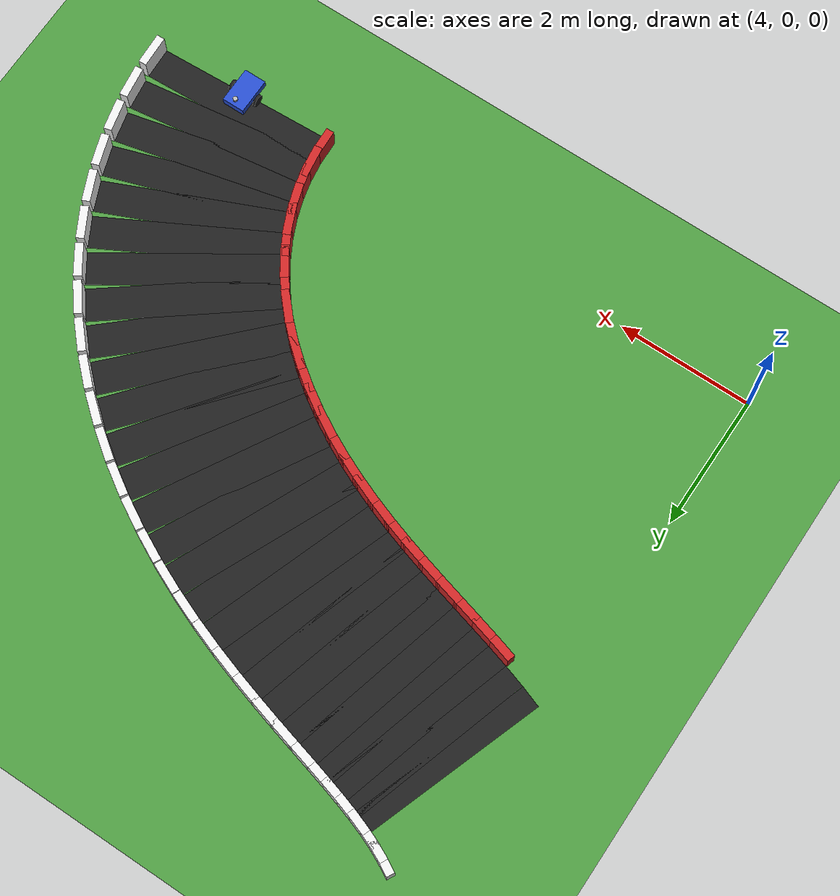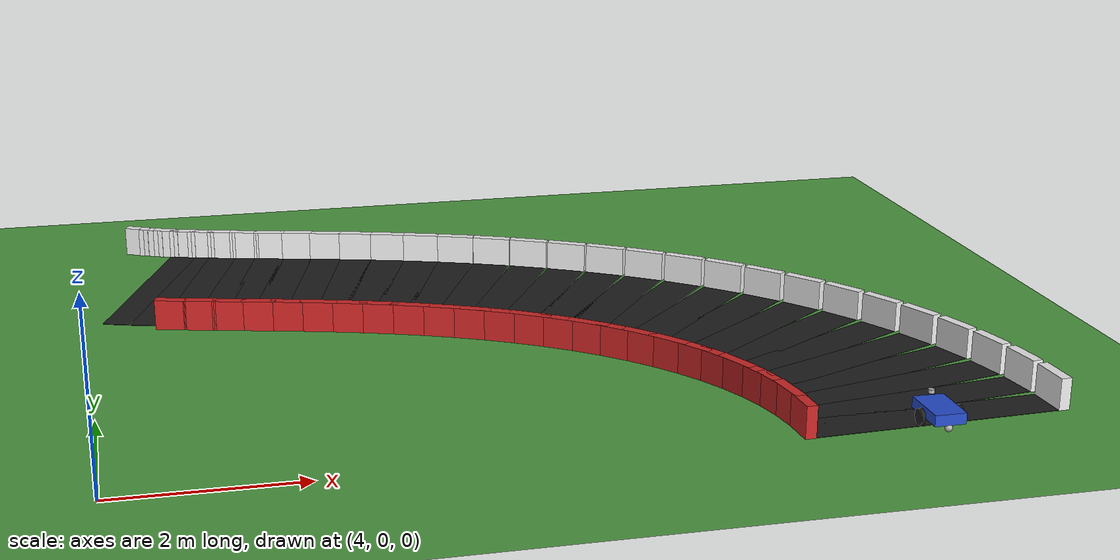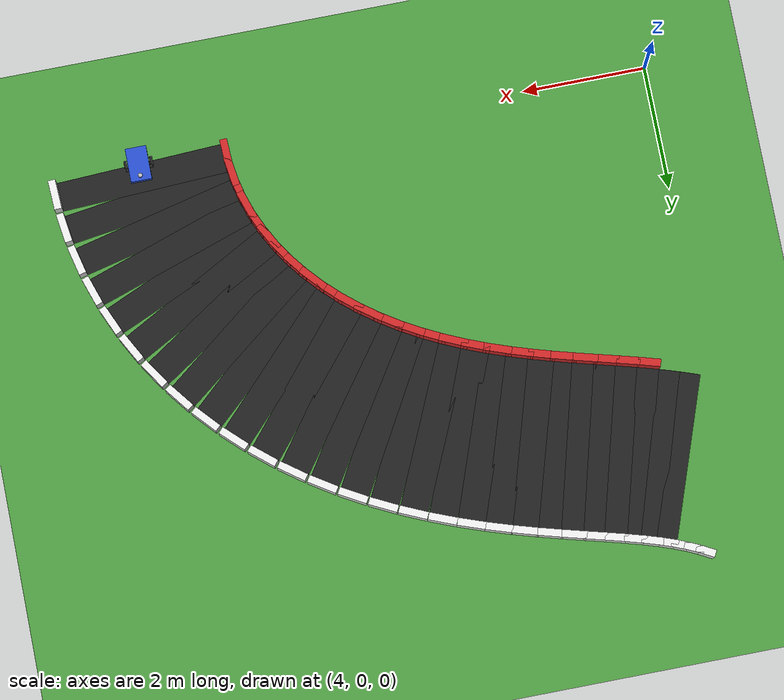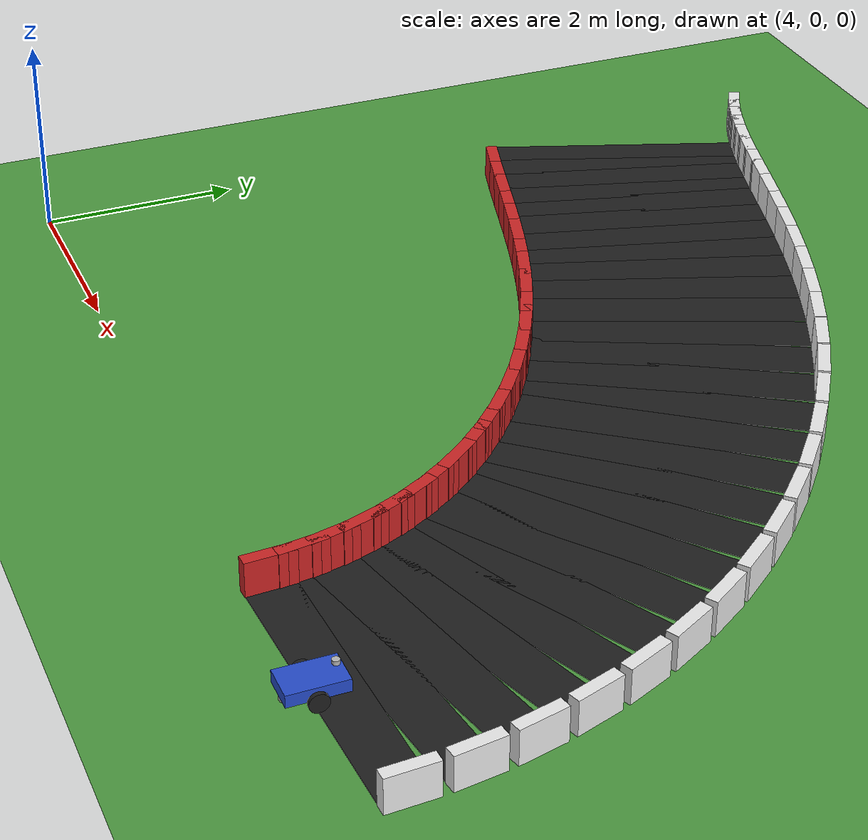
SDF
<sdf version="1.7">
 <world name="rl_track">
  <include><uri>model://sun</uri></include>
  <model name="ground">
   <static>true</static>
   <link name="link">
    <collision name="collision">
     <geometry><plane><normal>0 0 1</normal><size>40 40</size></plane></geometry>
    </collision>
    <visual name="visual">
     <geometry><plane><normal>0 0 1</normal><size>40 40</size></plane></geometry>
     <material>
      <script><uri>file://media/materials/scripts/gazebo.material</uri><name>Gazebo/Grass</name></script>
     </material>
    </visual>
   </link>
  </model>
  <model name="track">
   <static>true</static>
   <link name="road_000">
    <pose>12.289958 0.214412 0.003000 0 0 1.617599028</pose>
    <visual name="visual">
     <geometry><box><size>0.469294 2.700000 0.006000</size></box></geometry>
     <material>
      <script><uri>file://media/materials/scripts/gazebo.material</uri><name>Gazebo/Black</name></script>
     </material>
    </visual>
   </link>
   <link name="inner_wall_000">
    <pose>13.698414 0.280380 0.175000 0 0 1.617599028</pose>
    <collision name="collision">
     <geometry><box><size>0.479294 0.120000 0.350000</size></box></geometry>
     <surface><contact><ode><kp>1000000</kp><kd>10</kd></ode></contact></surface>
    </collision>
    <visual name="visual">
     <geometry><box><size>0.479294 0.120000 0.350000</size></box></geometry>
     <material>
      <script><uri>file://media/materials/scripts/gazebo.material</uri><name>Gazebo/White</name></script>
     </material>
    </visual>
   </link>
   <link name="outer_wall_000">
    <pose>10.881502 0.148444 0.175000 0 0 1.617599028</pose>
    <collision name="collision">
     <geometry><box><size>0.479294 0.120000 0.350000</size></box></geometry>
     <surface><contact><ode><kp>1000000</kp><kd>10</kd></ode></contact></surface>
    </collision>
    <visual name="visual">
     <geometry><box><size>0.479294 0.120000 0.350000</size></box></geometry>
     <material>
      <script><uri>file://media/materials/scripts/gazebo.material</uri><name>Gazebo/Red</name></script>
     </material>
    </visual>
   </link>
   <link name="road_001">
    <pose>12.249907 0.641661 0.003000 0 0 1.710862233</pose>
    <visual name="visual">
     <geometry><box><size>0.469884 2.700000 0.006000</size></box></geometry>
     <material>
      <script><uri>file://media/materials/scripts/gazebo.material</uri><name>Gazebo/Black</name></script>
     </material>
    </visual>
   </link>
   <link name="inner_wall_001">
    <pose>13.646099 0.838509 0.175000 0 0 1.710862233</pose>
    <collision name="collision">
     <geometry><box><size>0.479884 0.120000 0.350000</size></box></geometry>
     <surface><contact><ode><kp>1000000</kp><kd>10</kd></ode></contact></surface>
    </collision>
    <visual name="visual">
     <geometry><box><size>0.479884 0.120000 0.350000</size></box></geometry>
     <material>
      <script><uri>file://media/materials/scripts/gazebo.material</uri><name>Gazebo/White</name></script>
     </material>
    </visual>
   </link>
   <link name="outer_wall_001">
    <pose>10.853716 0.444814 0.175000 0 0 1.710862233</pose>
    <collision name="collision">
     <geometry><box><size>0.479884 0.120000 0.350000</size></box></geometry>
     <surface><contact><ode><kp>1000000</kp><kd>10</kd></ode></contact></surface>
    </collision>
    <visual name="visual">
     <geometry><box><size>0.479884 0.120000 0.350000</size></box></geometry>
     <material>
      <script><uri>file://media/materials/scripts/gazebo.material</uri><name>Gazebo/Red</name></script>
     </material>
    </visual>
   </link>
   <link name="road_002">
    <pose>12.170283 1.064216 0.003000 0 0 1.803113877</pose>
    <visual name="visual">
     <geometry><box><size>0.471014 2.700000 0.006000</size></box></geometry>
     <material>
      <script><uri>file://media/materials/scripts/gazebo.material</uri><name>Gazebo/Black</name></script>
     </material>
    </visual>
   </link>
   <link name="inner_wall_002">
    <pose>13.542404 1.388845 0.175000 0 0 1.803113877</pose>
    <collision name="collision">
     <geometry><box><size>0.481014 0.120000 0.350000</size></box></geometry>
     <surface><contact><ode><kp>1000000</kp><kd>10</kd></ode></contact></surface>
    </collision>
    <visual name="visual">
     <geometry><box><size>0.481014 0.120000 0.350000</size></box></geometry>
     <material>
      <script><uri>file://media/materials/scripts/gazebo.material</uri><name>Gazebo/White</name></script>
     </material>
    </visual>
   </link>
   <link name="outer_wall_002">
    <pose>10.798162 0.739587 0.175000 0 0 1.803113877</pose>
    <collision name="collision">
     <geometry><box><size>0.481014 0.120000 0.350000</size></box></geometry>
     <surface><contact><ode><kp>1000000</kp><kd>10</kd></ode></contact></surface>
    </collision>
    <visual name="visual">
     <geometry><box><size>0.481014 0.120000 0.350000</size></box></geometry>
     <material>
      <script><uri>file://media/materials/scripts/gazebo.material</uri><name>Gazebo/Red</name></script>
     </material>
    </visual>
   </link>
   <link name="road_003">
    <pose>12.052026 1.479044 0.003000 0 0 1.893727624</pose>
    <visual name="visual">
     <geometry><box><size>0.472582 2.700000 0.006000</size></box></geometry>
     <material>
      <script><uri>file://media/materials/scripts/gazebo.material</uri><name>Gazebo/Black</name></script>
     </material>
    </visual>
   </link>
   <link name="inner_wall_003">
    <pose>13.389143 1.926505 0.175000 0 0 1.893727624</pose>
    <collision name="collision">
     <geometry><box><size>0.482582 0.120000 0.350000</size></box></geometry>
     <surface><contact><ode><kp>1000000</kp><kd>10</kd></ode></contact></surface>
    </collision>
    <visual name="visual">
     <geometry><box><size>0.482582 0.120000 0.350000</size></box></geometry>
     <material>
      <script><uri>file://media/materials/scripts/gazebo.material</uri><name>Gazebo/White</name></script>
     </material>
    </visual>
   </link>
   <link name="outer_wall_003">
    <pose>10.714910 1.031584 0.175000 0 0 1.893727624</pose>
    <collision name="collision">
     <geometry><box><size>0.482582 0.120000 0.350000</size></box></geometry>
     <surface><contact><ode><kp>1000000</kp><kd>10</kd></ode></contact></surface>
    </collision>
    <visual name="visual">
     <geometry><box><size>0.482582 0.120000 0.350000</size></box></geometry>
     <material>
      <script><uri>file://media/materials/scripts/gazebo.material</uri><name>Gazebo/Red</name></script>
     </material>
    </visual>
   </link>
   <link name="road_004">
    <pose>11.896531 1.883260 0.003000 0 0 1.982142442</pose>
    <visual name="visual">
     <geometry><box><size>0.474449 2.700000 0.006000</size></box></geometry>
     <material>
      <script><uri>file://media/materials/scripts/gazebo.material</uri><name>Gazebo/Black</name></script>
     </material>
    </visual>
   </link>
   <link name="inner_wall_004">
    <pose>13.188914 2.447039 0.175000 0 0 1.982142442</pose>
    <collision name="collision">
     <geometry><box><size>0.484449 0.120000 0.350000</size></box></geometry>
     <surface><contact><ode><kp>1000000</kp><kd>10</kd></ode></contact></surface>
    </collision>
    <visual name="visual">
     <geometry><box><size>0.484449 0.120000 0.350000</size></box></geometry>
     <material>
      <script><uri>file://media/materials/scripts/gazebo.material</uri><name>Gazebo/White</name></script>
     </material>
    </visual>
   </link>
   <link name="outer_wall_004">
    <pose>10.604148 1.319480 0.175000 0 0 1.982142442</pose>
    <collision name="collision">
     <geometry><box><size>0.484449 0.120000 0.350000</size></box></geometry>
     <surface><contact><ode><kp>1000000</kp><kd>10</kd></ode></contact></surface>
    </collision>
    <visual name="visual">
     <geometry><box><size>0.484449 0.120000 0.350000</size></box></geometry>
     <material>
      <script><uri>file://media/materials/scripts/gazebo.material</uri><name>Gazebo/Red</name></script>
     </material>
    </visual>
   </link>
   <link name="road_005">
    <pose>11.705614 2.274175 0.003000 0 0 2.067876769</pose>
    <visual name="visual">
     <geometry><box><size>0.476441 2.700000 0.006000</size></box></geometry>
     <material>
      <script><uri>file://media/materials/scripts/gazebo.material</uri><name>Gazebo/Black</name></script>
     </material>
    </visual>
   </link>
   <link name="inner_wall_005">
    <pose>12.944974 2.946550 0.175000 0 0 2.067876769</pose>
    <collision name="collision">
     <geometry><box><size>0.486441 0.120000 0.350000</size></box></geometry>
     <surface><contact><ode><kp>1000000</kp><kd>10</kd></ode></contact></surface>
    </collision>
    <visual name="visual">
     <geometry><box><size>0.486441 0.120000 0.350000</size></box></geometry>
     <material>
      <script><uri>file://media/materials/scripts/gazebo.material</uri><name>Gazebo/White</name></script>
     </material>
    </visual>
   </link>
   <link name="outer_wall_005">
    <pose>10.466255 1.601801 0.175000 0 0 2.067876769</pose>
    <collision name="collision">
     <geometry><box><size>0.486441 0.120000 0.350000</size></box></geometry>
     <surface><contact><ode><kp>1000000</kp><kd>10</kd></ode></contact></surface>
    </collision>
    <visual name="visual">
     <geometry><box><size>0.486441 0.120000 0.350000</size></box></geometry>
     <material>
      <script><uri>file://media/materials/scripts/gazebo.material</uri><name>Gazebo/Red</name></script>
     </material>
    </visual>
   </link>
   <link name="road_006">
    <pose>11.481486 2.649353 0.003000 0 0 2.150533756</pose>
    <visual name="visual">
     <geometry><box><size>0.478358 2.700000 0.006000</size></box></geometry>
     <material>
      <script><uri>file://media/materials/scripts/gazebo.material</uri><name>Gazebo/Black</name></script>
     </material>
    </visual>
   </link>
   <link name="inner_wall_006">
    <pose>12.661101 3.421757 0.175000 0 0 2.150533756</pose>
    <collision name="collision">
     <geometry><box><size>0.488358 0.120000 0.350000</size></box></geometry>
     <surface><contact><ode><kp>1000000</kp><kd>10</kd></ode></contact></surface>
    </collision>
    <visual name="visual">
     <geometry><box><size>0.488358 0.120000 0.350000</size></box></geometry>
     <material>
      <script><uri>file://media/materials/scripts/gazebo.material</uri><name>Gazebo/White</name></script>
     </material>
    </visual>
   </link>
   <link name="outer_wall_006">
    <pose>10.301871 1.876949 0.175000 0 0 2.150533756</pose>
    <collision name="collision">
     <geometry><box><size>0.488358 0.120000 0.350000</size></box></geometry>
     <surface><contact><ode><kp>1000000</kp><kd>10</kd></ode></contact></surface>
    </collision>
    <visual name="visual">
     <geometry><box><size>0.488358 0.120000 0.350000</size></box></geometry>
     <material>
      <script><uri>file://media/materials/scripts/gazebo.material</uri><name>Gazebo/Red</name></script>
     </material>
    </visual>
   </link>
   <link name="road_007">
    <pose>11.226709 3.006650 0.003000 0 0 2.229798280</pose>
    <visual name="visual">
     <geometry><box><size>0.479992 2.700000 0.006000</size></box></geometry>
     <material>
      <script><uri>file://media/materials/scripts/gazebo.material</uri><name>Gazebo/Black</name></script>
     </material>
    </visual>
   </link>
   <link name="inner_wall_007">
    <pose>12.341460 3.870032 0.175000 0 0 2.229798280</pose>
    <collision name="collision">
     <geometry><box><size>0.489992 0.120000 0.350000</size></box></geometry>
     <surface><contact><ode><kp>1000000</kp><kd>10</kd></ode></contact></surface>
    </collision>
    <visual name="visual">
     <geometry><box><size>0.489992 0.120000 0.350000</size></box></geometry>
     <material>
      <script><uri>file://media/materials/scripts/gazebo.material</uri><name>Gazebo/White</name></script>
     </material>
    </visual>
   </link>
   <link name="outer_wall_007">
    <pose>10.111958 2.143267 0.175000 0 0 2.229798280</pose>
    <collision name="collision">
     <geometry><box><size>0.489992 0.120000 0.350000</size></box></geometry>
     <surface><contact><ode><kp>1000000</kp><kd>10</kd></ode></contact></surface>
    </collision>
    <visual name="visual">
     <geometry><box><size>0.489992 0.120000 0.350000</size></box></geometry>
     <material>
      <script><uri>file://media/materials/scripts/gazebo.material</uri><name>Gazebo/Red</name></script>
     </material>
    </visual>
   </link>
   <link name="road_008">
    <pose>10.944152 3.344256 0.003000 0 0 2.305427389</pose>
    <visual name="visual">
     <geometry><box><size>0.481129 2.700000 0.006000</size></box></geometry>
     <material>
      <script><uri>file://media/materials/scripts/gazebo.material</uri><name>Gazebo/Black</name></script>
     </material>
    </visual>
   </link>
   <link name="inner_wall_008">
    <pose>11.990482 4.289398 0.175000 0 0 2.305427389</pose>
    <collision name="collision">
     <geometry><box><size>0.491129 0.120000 0.350000</size></box></geometry>
     <surface><contact><ode><kp>1000000</kp><kd>10</kd></ode></contact></surface>
    </collision>
    <visual name="visual">
     <geometry><box><size>0.491129 0.120000 0.350000</size></box></geometry>
     <material>
      <script><uri>file://media/materials/scripts/gazebo.material</uri><name>Gazebo/White</name></script>
     </material>
    </visual>
   </link>
   <link name="outer_wall_008">
    <pose>9.897822 2.399114 0.175000 0 0 2.305427389</pose>
    <collision name="collision">
     <geometry><box><size>0.491129 0.120000 0.350000</size></box></geometry>
     <surface><contact><ode><kp>1000000</kp><kd>10</kd></ode></contact></surface>
    </collision>
    <visual name="visual">
     <geometry><box><size>0.491129 0.120000 0.350000</size></box></geometry>
     <material>
      <script><uri>file://media/materials/scripts/gazebo.material</uri><name>Gazebo/Red</name></script>
     </material>
    </visual>
   </link>
   <link name="road_009">
    <pose>10.636938 3.660728 0.003000 0 0 2.377236263</pose>
    <visual name="visual">
     <geometry><box><size>0.481562 2.700000 0.006000</size></box></geometry>
     <material>
      <script><uri>file://media/materials/scripts/gazebo.material</uri><name>Gazebo/Black</name></script>
     </material>
    </visual>
   </link>
   <link name="inner_wall_009">
    <pose>11.612761 4.678506 0.175000 0 0 2.377236263</pose>
    <collision name="collision">
     <geometry><box><size>0.491562 0.120000 0.350000</size></box></geometry>
     <surface><contact><ode><kp>1000000</kp><kd>10</kd></ode></contact></surface>
    </collision>
    <visual name="visual">
     <geometry><box><size>0.491562 0.120000 0.350000</size></box></geometry>
     <material>
      <script><uri>file://media/materials/scripts/gazebo.material</uri><name>Gazebo/White</name></script>
     </material>
    </visual>
   </link>
   <link name="outer_wall_009">
    <pose>9.661116 2.642951 0.175000 0 0 2.377236263</pose>
    <collision name="collision">
     <geometry><box><size>0.491562 0.120000 0.350000</size></box></geometry>
     <surface><contact><ode><kp>1000000</kp><kd>10</kd></ode></contact></surface>
    </collision>
    <visual name="visual">
     <geometry><box><size>0.491562 0.120000 0.350000</size></box></geometry>
     <material>
      <script><uri>file://media/materials/scripts/gazebo.material</uri><name>Gazebo/Red</name></script>
     </material>
    </visual>
   </link>
   <link name="road_010">
    <pose>10.308393 3.955016 0.003000 0 0 2.445081689</pose>
    <visual name="visual">
     <geometry><box><size>0.481097 2.700000 0.006000</size></box></geometry>
     <material>
      <script><uri>file://media/materials/scripts/gazebo.material</uri><name>Gazebo/Black</name></script>
     </material>
    </visual>
   </link>
   <link name="inner_wall_010">
    <pose>11.212972 5.036607 0.175000 0 0 2.445081689</pose>
    <collision name="collision">
     <geometry><box><size>0.491097 0.120000 0.350000</size></box></geometry>
     <surface><contact><ode><kp>1000000</kp><kd>10</kd></ode></contact></surface>
    </collision>
    <visual name="visual">
     <geometry><box><size>0.491097 0.120000 0.350000</size></box></geometry>
     <material>
      <script><uri>file://media/materials/scripts/gazebo.material</uri><name>Gazebo/White</name></script>
     </material>
    </visual>
   </link>
   <link name="outer_wall_010">
    <pose>9.403814 2.873426 0.175000 0 0 2.445081689</pose>
    <collision name="collision">
     <geometry><box><size>0.491097 0.120000 0.350000</size></box></geometry>
     <surface><contact><ode><kp>1000000</kp><kd>10</kd></ode></contact></surface>
    </collision>
    <visual name="visual">
     <geometry><box><size>0.491097 0.120000 0.350000</size></box></geometry>
     <material>
      <script><uri>file://media/materials/scripts/gazebo.material</uri><name>Gazebo/Red</name></script>
     </material>
    </visual>
   </link>
   <link name="road_011">
    <pose>9.961980 4.226479 0.003000 0 0 2.508844629</pose>
    <visual name="visual">
     <geometry><box><size>0.479564 2.700000 0.006000</size></box></geometry>
     <material>
      <script><uri>file://media/materials/scripts/gazebo.material</uri><name>Gazebo/Black</name></script>
     </material>
    </visual>
   </link>
   <link name="inner_wall_011">
    <pose>10.795802 5.363511 0.175000 0 0 2.508844629</pose>
    <collision name="collision">
     <geometry><box><size>0.489564 0.120000 0.350000</size></box></geometry>
     <surface><contact><ode><kp>1000000</kp><kd>10</kd></ode></contact></surface>
    </collision>
    <visual name="visual">
     <geometry><box><size>0.489564 0.120000 0.350000</size></box></geometry>
     <material>
      <script><uri>file://media/materials/scripts/gazebo.material</uri><name>Gazebo/White</name></script>
     </material>
    </visual>
   </link>
   <link name="outer_wall_011">
    <pose>9.128159 3.089447 0.175000 0 0 2.508844629</pose>
    <collision name="collision">
     <geometry><box><size>0.489564 0.120000 0.350000</size></box></geometry>
     <surface><contact><ode><kp>1000000</kp><kd>10</kd></ode></contact></surface>
    </collision>
    <visual name="visual">
     <geometry><box><size>0.489564 0.120000 0.350000</size></box></geometry>
     <material>
      <script><uri>file://media/materials/scripts/gazebo.material</uri><name>Gazebo/Red</name></script>
     </material>
    </visual>
   </link>
   <link name="road_012">
    <pose>9.601244 4.474895 0.003000 0 0 2.568412942</pose>
    <visual name="visual">
     <geometry><box><size>0.476818 2.700000 0.006000</size></box></geometry>
     <material>
      <script><uri>file://media/materials/scripts/gazebo.material</uri><name>Gazebo/Black</name></script>
     </material>
    </visual>
   </link>
   <link name="inner_wall_012">
    <pose>10.365896 5.659550 0.175000 0 0 2.568412942</pose>
    <collision name="collision">
     <geometry><box><size>0.486818 0.120000 0.350000</size></box></geometry>
     <surface><contact><ode><kp>1000000</kp><kd>10</kd></ode></contact></surface>
    </collision>
    <visual name="visual">
     <geometry><box><size>0.486818 0.120000 0.350000</size></box></geometry>
     <material>
      <script><uri>file://media/materials/scripts/gazebo.material</uri><name>Gazebo/White</name></script>
     </material>
    </visual>
   </link>
   <link name="outer_wall_012">
    <pose>8.836592 3.290240 0.175000 0 0 2.568412942</pose>
    <collision name="collision">
     <geometry><box><size>0.486818 0.120000 0.350000</size></box></geometry>
     <surface><contact><ode><kp>1000000</kp><kd>10</kd></ode></contact></surface>
    </collision>
    <visual name="visual">
     <geometry><box><size>0.486818 0.120000 0.350000</size></box></geometry>
     <material>
      <script><uri>file://media/materials/scripts/gazebo.material</uri><name>Gazebo/Red</name></script>
     </material>
    </visual>
   </link>
   <link name="road_013">
    <pose>9.229746 4.700462 0.003000 0 0 2.623664831</pose>
    <visual name="visual">
     <geometry><box><size>0.472747 2.700000 0.006000</size></box></geometry>
     <material>
      <script><uri>file://media/materials/scripts/gazebo.material</uri><name>Gazebo/Black</name></script>
     </material>
    </visual>
   </link>
   <link name="inner_wall_013">
    <pose>9.927810 5.925536 0.175000 0 0 2.623664831</pose>
    <collision name="collision">
     <geometry><box><size>0.482747 0.120000 0.350000</size></box></geometry>
     <surface><contact><ode><kp>1000000</kp><kd>10</kd></ode></contact></surface>
    </collision>
    <visual name="visual">
     <geometry><box><size>0.482747 0.120000 0.350000</size></box></geometry>
     <material>
      <script><uri>file://media/materials/scripts/gazebo.material</uri><name>Gazebo/White</name></script>
     </material>
    </visual>
   </link>
   <link name="outer_wall_013">
    <pose>8.531682 3.475387 0.175000 0 0 2.623664831</pose>
    <collision name="collision">
     <geometry><box><size>0.482747 0.120000 0.350000</size></box></geometry>
     <surface><contact><ode><kp>1000000</kp><kd>10</kd></ode></contact></surface>
    </collision>
    <visual name="visual">
     <geometry><box><size>0.482747 0.120000 0.350000</size></box></geometry>
     <material>
      <script><uri>file://media/materials/scripts/gazebo.material</uri><name>Gazebo/Red</name></script>
     </material>
    </visual>
   </link>
   <link name="road_014">
    <pose>8.851002 4.903792 0.003000 0 0 2.674453203</pose>
    <visual name="visual">
     <geometry><box><size>0.467274 2.700000 0.006000</size></box></geometry>
     <material>
      <script><uri>file://media/materials/scripts/gazebo.material</uri><name>Gazebo/Black</name></script>
     </material>
    </visual>
   </link>
   <link name="inner_wall_014">
    <pose>9.485973 6.162725 0.175000 0 0 2.674453203</pose>
    <collision name="collision">
     <geometry><box><size>0.477274 0.120000 0.350000</size></box></geometry>
     <surface><contact><ode><kp>1000000</kp><kd>10</kd></ode></contact></surface>
    </collision>
    <visual name="visual">
     <geometry><box><size>0.477274 0.120000 0.350000</size></box></geometry>
     <material>
      <script><uri>file://media/materials/scripts/gazebo.material</uri><name>Gazebo/White</name></script>
     </material>
    </visual>
   </link>
   <link name="outer_wall_014">
    <pose>8.216031 3.644859 0.175000 0 0 2.674453203</pose>
    <collision name="collision">
     <geometry><box><size>0.477274 0.120000 0.350000</size></box></geometry>
     <surface><contact><ode><kp>1000000</kp><kd>10</kd></ode></contact></surface>
    </collision>
    <visual name="visual">
     <geometry><box><size>0.477274 0.120000 0.350000</size></box></geometry>
     <material>
      <script><uri>file://media/materials/scripts/gazebo.material</uri><name>Gazebo/Red</name></script>
     </material>
    </visual>
   </link>
   <link name="road_015">
    <pose>8.468426 5.085896 0.003000 0 0 2.720590876</pose>
    <visual name="visual">
     <geometry><box><size>0.460363 2.700000 0.006000</size></box></geometry>
     <material>
      <script><uri>file://media/materials/scripts/gazebo.material</uri><name>Gazebo/Black</name></script>
     </material>
    </visual>
   </link>
   <link name="inner_wall_015">
    <pose>9.044657 6.372775 0.175000 0 0 2.720590876</pose>
    <collision name="collision">
     <geometry><box><size>0.470363 0.120000 0.350000</size></box></geometry>
     <surface><contact><ode><kp>1000000</kp><kd>10</kd></ode></contact></surface>
    </collision>
    <visual name="visual">
     <geometry><box><size>0.470363 0.120000 0.350000</size></box></geometry>
     <material>
      <script><uri>file://media/materials/scripts/gazebo.material</uri><name>Gazebo/White</name></script>
     </material>
    </visual>
   </link>
   <link name="outer_wall_015">
    <pose>7.892194 3.799017 0.175000 0 0 2.720590876</pose>
    <collision name="collision">
     <geometry><box><size>0.470363 0.120000 0.350000</size></box></geometry>
     <surface><contact><ode><kp>1000000</kp><kd>10</kd></ode></contact></surface>
    </collision>
    <visual name="visual">
     <geometry><box><size>0.470363 0.120000 0.350000</size></box></geometry>
     <material>
      <script><uri>file://media/materials/scripts/gazebo.material</uri><name>Gazebo/Red</name></script>
     </material>
    </visual>
   </link>
   <link name="road_016">
    <pose>8.085265 5.248158 0.003000 0 0 2.761836565</pose>
    <visual name="visual">
     <geometry><box><size>0.452019 2.700000 0.006000</size></box></geometry>
     <material>
      <script><uri>file://media/materials/scripts/gazebo.material</uri><name>Gazebo/Black</name></script>
     </material>
    </visual>
   </link>
   <link name="inner_wall_016">
    <pose>8.607943 6.557703 0.175000 0 0 2.761836565</pose>
    <collision name="collision">
     <geometry><box><size>0.462019 0.120000 0.350000</size></box></geometry>
     <surface><contact><ode><kp>1000000</kp><kd>10</kd></ode></contact></surface>
    </collision>
    <visual name="visual">
     <geometry><box><size>0.462019 0.120000 0.350000</size></box></geometry>
     <material>
      <script><uri>file://media/materials/scripts/gazebo.material</uri><name>Gazebo/White</name></script>
     </material>
    </visual>
   </link>
   <link name="outer_wall_016">
    <pose>7.562586 3.938614 0.175000 0 0 2.761836565</pose>
    <collision name="collision">
     <geometry><box><size>0.462019 0.120000 0.350000</size></box></geometry>
     <surface><contact><ode><kp>1000000</kp><kd>10</kd></ode></contact></surface>
    </collision>
    <visual name="visual">
     <geometry><box><size>0.462019 0.120000 0.350000</size></box></geometry>
     <material>
      <script><uri>file://media/materials/scripts/gazebo.material</uri><name>Gazebo/Red</name></script>
     </material>
    </visual>
   </link>
   <link name="road_017">
    <pose>7.704551 5.392308 0.003000 0 0 2.797881679</pose>
    <visual name="visual">
     <geometry><box><size>0.442292 2.700000 0.006000</size></box></geometry>
     <material>
      <script><uri>file://media/materials/scripts/gazebo.material</uri><name>Gazebo/Black</name></script>
     </material>
    </visual>
   </link>
   <link name="inner_wall_017">
    <pose>8.179698 6.719838 0.175000 0 0 2.797881679</pose>
    <collision name="collision">
     <geometry><box><size>0.452292 0.120000 0.350000</size></box></geometry>
     <surface><contact><ode><kp>1000000</kp><kd>10</kd></ode></contact></surface>
    </collision>
    <visual name="visual">
     <geometry><box><size>0.452292 0.120000 0.350000</size></box></geometry>
     <material>
      <script><uri>file://media/materials/scripts/gazebo.material</uri><name>Gazebo/White</name></script>
     </material>
    </visual>
   </link>
   <link name="outer_wall_017">
    <pose>7.229405 4.064778 0.175000 0 0 2.797881679</pose>
    <collision name="collision">
     <geometry><box><size>0.452292 0.120000 0.350000</size></box></geometry>
     <surface><contact><ode><kp>1000000</kp><kd>10</kd></ode></contact></surface>
    </collision>
    <visual name="visual">
     <geometry><box><size>0.452292 0.120000 0.350000</size></box></geometry>
     <material>
      <script><uri>file://media/materials/scripts/gazebo.material</uri><name>Gazebo/Red</name></script>
     </material>
    </visual>
   </link>
   <link name="road_018">
    <pose>7.329049 5.520379 0.003000 0 0 2.828338421</pose>
    <visual name="visual">
     <geometry><box><size>0.431283 2.700000 0.006000</size></box></geometry>
     <material>
      <script><uri>file://media/materials/scripts/gazebo.material</uri><name>Gazebo/Black</name></script>
     </material>
    </visual>
   </link>
   <link name="inner_wall_018">
    <pose>7.763549 6.861762 0.175000 0 0 2.828338421</pose>
    <collision name="collision">
     <geometry><box><size>0.441283 0.120000 0.350000</size></box></geometry>
     <surface><contact><ode><kp>1000000</kp><kd>10</kd></ode></contact></surface>
    </collision>
    <visual name="visual">
     <geometry><box><size>0.441283 0.120000 0.350000</size></box></geometry>
     <material>
      <script><uri>file://media/materials/scripts/gazebo.material</uri><name>Gazebo/White</name></script>
     </material>
    </visual>
   </link>
   <link name="outer_wall_018">
    <pose>6.894549 4.178995 0.175000 0 0 2.828338421</pose>
    <collision name="collision">
     <geometry><box><size>0.441283 0.120000 0.350000</size></box></geometry>
     <surface><contact><ode><kp>1000000</kp><kd>10</kd></ode></contact></surface>
    </collision>
    <visual name="visual">
     <geometry><box><size>0.441283 0.120000 0.350000</size></box></geometry>
     <material>
      <script><uri>file://media/materials/scripts/gazebo.material</uri><name>Gazebo/Red</name></script>
     </material>
    </visual>
   </link>
   <link name="road_019">
    <pose>6.961211 5.634669 0.003000 0 0 2.852730410</pose>
    <visual name="visual">
     <geometry><box><size>0.419143 2.700000 0.006000</size></box></geometry>
     <material>
      <script><uri>file://media/materials/scripts/gazebo.material</uri><name>Gazebo/Black</name></script>
     </material>
    </visual>
   </link>
   <link name="inner_wall_019">
    <pose>7.362866 6.986250 0.175000 0 0 2.852730410</pose>
    <collision name="collision">
     <geometry><box><size>0.429143 0.120000 0.350000</size></box></geometry>
     <surface><contact><ode><kp>1000000</kp><kd>10</kd></ode></contact></surface>
    </collision>
    <visual name="visual">
     <geometry><box><size>0.429143 0.120000 0.350000</size></box></geometry>
     <material>
      <script><uri>file://media/materials/scripts/gazebo.material</uri><name>Gazebo/White</name></script>
     </material>
    </visual>
   </link>
   <link name="outer_wall_019">
    <pose>6.559556 4.283087 0.175000 0 0 2.852730410</pose>
    <collision name="collision">
     <geometry><box><size>0.429143 0.120000 0.350000</size></box></geometry>
     <surface><contact><ode><kp>1000000</kp><kd>10</kd></ode></contact></surface>
    </collision>
    <visual name="visual">
     <geometry><box><size>0.429143 0.120000 0.350000</size></box></geometry>
     <material>
      <script><uri>file://media/materials/scripts/gazebo.material</uri><name>Gazebo/Red</name></script>
     </material>
    </visual>
   </link>
   <link name="road_020">
    <pose>6.603140 5.737687 0.003000 0 0 2.870488422</pose>
    <visual name="visual">
     <geometry><box><size>0.406078 2.700000 0.006000</size></box></geometry>
     <material>
      <script><uri>file://media/materials/scripts/gazebo.material</uri><name>Gazebo/Black</name></script>
     </material>
    </visual>
   </link>
   <link name="inner_wall_020">
    <pose>6.980731 7.096188 0.175000 0 0 2.870488422</pose>
    <collision name="collision">
     <geometry><box><size>0.416078 0.120000 0.350000</size></box></geometry>
     <surface><contact><ode><kp>1000000</kp><kd>10</kd></ode></contact></surface>
    </collision>
    <visual name="visual">
     <geometry><box><size>0.416078 0.120000 0.350000</size></box></geometry>
     <material>
      <script><uri>file://media/materials/scripts/gazebo.material</uri><name>Gazebo/White</name></script>
     </material>
    </visual>
   </link>
   <link name="outer_wall_020">
    <pose>6.225548 4.379186 0.175000 0 0 2.870488422</pose>
    <collision name="collision">
     <geometry><box><size>0.416078 0.120000 0.350000</size></box></geometry>
     <surface><contact><ode><kp>1000000</kp><kd>10</kd></ode></contact></surface>
    </collision>
    <visual name="visual">
     <geometry><box><size>0.416078 0.120000 0.350000</size></box></geometry>
     <material>
      <script><uri>file://media/materials/scripts/gazebo.material</uri><name>Gazebo/Red</name></script>
     </material>
    </visual>
   </link>
   <link name="road_021">
    <pose>6.256560 5.832104 0.003000 0 0 2.880955869</pose>
    <visual name="visual">
     <geometry><box><size>0.392353 2.700000 0.006000</size></box></geometry>
     <material>
      <script><uri>file://media/materials/scripts/gazebo.material</uri><name>Gazebo/Black</name></script>
     </material>
    </visual>
   </link>
   <link name="inner_wall_021">
    <pose>6.619911 7.194483 0.175000 0 0 2.880955869</pose>
    <collision name="collision">
     <geometry><box><size>0.402353 0.120000 0.350000</size></box></geometry>
     <surface><contact><ode><kp>1000000</kp><kd>10</kd></ode></contact></surface>
    </collision>
    <visual name="visual">
     <geometry><box><size>0.402353 0.120000 0.350000</size></box></geometry>
     <material>
      <script><uri>file://media/materials/scripts/gazebo.material</uri><name>Gazebo/White</name></script>
     </material>
    </visual>
   </link>
   <link name="outer_wall_021">
    <pose>5.893209 4.469725 0.175000 0 0 2.880955869</pose>
    <collision name="collision">
     <geometry><box><size>0.402353 0.120000 0.350000</size></box></geometry>
     <surface><contact><ode><kp>1000000</kp><kd>10</kd></ode></contact></surface>
    </collision>
    <visual name="visual">
     <geometry><box><size>0.402353 0.120000 0.350000</size></box></geometry>
     <material>
      <script><uri>file://media/materials/scripts/gazebo.material</uri><name>Gazebo/Red</name></script>
     </material>
    </visual>
   </link>
   <link name="road_022">
    <pose>5.922792 5.920691 0.003000 0 0 2.883411629</pose>
    <visual name="visual">
     <geometry><box><size>0.378296 2.700000 0.006000</size></box></geometry>
     <material>
      <script><uri>file://media/materials/scripts/gazebo.material</uri><name>Gazebo/Black</name></script>
     </material>
    </visual>
   </link>
   <link name="inner_wall_022">
    <pose>6.282797 7.283958 0.175000 0 0 2.883411629</pose>
    <collision name="collision">
     <geometry><box><size>0.388296 0.120000 0.350000</size></box></geometry>
     <surface><contact><ode><kp>1000000</kp><kd>10</kd></ode></contact></surface>
    </collision>
    <visual name="visual">
     <geometry><box><size>0.388296 0.120000 0.350000</size></box></geometry>
     <material>
      <script><uri>file://media/materials/scripts/gazebo.material</uri><name>Gazebo/White</name></script>
     </material>
    </visual>
   </link>
   <link name="outer_wall_022">
    <pose>5.562788 4.557424 0.175000 0 0 2.883411629</pose>
    <collision name="collision">
     <geometry><box><size>0.388296 0.120000 0.350000</size></box></geometry>
     <surface><contact><ode><kp>1000000</kp><kd>10</kd></ode></contact></surface>
    </collision>
    <visual name="visual">
     <geometry><box><size>0.388296 0.120000 0.350000</size></box></geometry>
     <material>
      <script><uri>file://media/materials/scripts/gazebo.material</uri><name>Gazebo/Red</name></script>
     </material>
    </visual>
   </link>
   <link name="road_023">
    <pose>5.602740 6.006264 0.003000 0 0 2.877121469</pose>
    <visual name="visual">
     <geometry><box><size>0.364298 2.700000 0.006000</size></box></geometry>
     <material>
      <script><uri>file://media/materials/scripts/gazebo.material</uri><name>Gazebo/Black</name></script>
     </material>
    </visual>
   </link>
   <link name="inner_wall_023">
    <pose>5.971312 7.367240 0.175000 0 0 2.877121469</pose>
    <collision name="collision">
     <geometry><box><size>0.374298 0.120000 0.350000</size></box></geometry>
     <surface><contact><ode><kp>1000000</kp><kd>10</kd></ode></contact></surface>
    </collision>
    <visual name="visual">
     <geometry><box><size>0.374298 0.120000 0.350000</size></box></geometry>
     <material>
      <script><uri>file://media/materials/scripts/gazebo.material</uri><name>Gazebo/White</name></script>
     </material>
    </visual>
   </link>
   <link name="outer_wall_023">
    <pose>5.234167 4.645289 0.175000 0 0 2.877121469</pose>
    <collision name="collision">
     <geometry><box><size>0.374298 0.120000 0.350000</size></box></geometry>
     <surface><contact><ode><kp>1000000</kp><kd>10</kd></ode></contact></surface>
    </collision>
    <visual name="visual">
     <geometry><box><size>0.374298 0.120000 0.350000</size></box></geometry>
     <material>
      <script><uri>file://media/materials/scripts/gazebo.material</uri><name>Gazebo/Red</name></script>
     </material>
    </visual>
   </link>
   <link name="road_024">
    <pose>5.296881 6.091621 0.003000 0 0 2.861432331</pose>
    <visual name="visual">
     <geometry><box><size>0.350813 2.700000 0.006000</size></box></geometry>
     <material>
      <script><uri>file://media/materials/scripts/gazebo.material</uri><name>Gazebo/Black</name></script>
     </material>
    </visual>
   </link>
   <link name="inner_wall_024">
    <pose>5.686760 7.446647 0.175000 0 0 2.861432331</pose>
    <collision name="collision">
     <geometry><box><size>0.360813 0.120000 0.350000</size></box></geometry>
     <surface><contact><ode><kp>1000000</kp><kd>10</kd></ode></contact></surface>
    </collision>
    <visual name="visual">
     <geometry><box><size>0.360813 0.120000 0.350000</size></box></geometry>
     <material>
      <script><uri>file://media/materials/scripts/gazebo.material</uri><name>Gazebo/White</name></script>
     </material>
    </visual>
   </link>
   <link name="outer_wall_024">
    <pose>4.907003 4.736595 0.175000 0 0 2.861432331</pose>
    <collision name="collision">
     <geometry><box><size>0.360813 0.120000 0.350000</size></box></geometry>
     <surface><contact><ode><kp>1000000</kp><kd>10</kd></ode></contact></surface>
    </collision>
    <visual name="visual">
     <geometry><box><size>0.360813 0.120000 0.350000</size></box></geometry>
     <material>
      <script><uri>file://media/materials/scripts/gazebo.material</uri><name>Gazebo/Red</name></script>
     </material>
    </visual>
   </link>
   <link name="road_025">
    <pose>5.005275 6.179484 0.003000 0 0 2.835922841</pose>
    <visual name="visual">
     <geometry><box><size>0.338349 2.700000 0.006000</size></box></geometry>
     <material>
      <script><uri>file://media/materials/scripts/gazebo.material</uri><name>Gazebo/Black</name></script>
     </material>
    </visual>
   </link>
   <link name="inner_wall_025">
    <pose>5.429589 7.524124 0.175000 0 0 2.835922841</pose>
    <collision name="collision">
     <geometry><box><size>0.348349 0.120000 0.350000</size></box></geometry>
     <surface><contact><ode><kp>1000000</kp><kd>10</kd></ode></contact></surface>
    </collision>
    <visual name="visual">
     <geometry><box><size>0.348349 0.120000 0.350000</size></box></geometry>
     <material>
      <script><uri>file://media/materials/scripts/gazebo.material</uri><name>Gazebo/White</name></script>
     </material>
    </visual>
   </link>
   <link name="road_026">
    <pose>4.727564 6.272439 0.003000 0 0 2.800612221</pose>
    <visual name="visual">
     <geometry><box><size>0.327451 2.700000 0.006000</size></box></geometry>
     <material>
      <script><uri>file://media/materials/scripts/gazebo.material</uri><name>Gazebo/Black</name></script>
     </material>
    </visual>
   </link>
   <link name="inner_wall_026">
    <pose>5.199084 7.601261 0.175000 0 0 2.800612221</pose>
    <collision name="collision">
     <geometry><box><size>0.337451 0.120000 0.350000</size></box></geometry>
     <surface><contact><ode><kp>1000000</kp><kd>10</kd></ode></contact></surface>
    </collision>
    <visual name="visual">
     <geometry><box><size>0.337451 0.120000 0.350000</size></box></geometry>
     <material>
      <script><uri>file://media/materials/scripts/gazebo.material</uri><name>Gazebo/White</name></script>
     </material>
    </visual>
   </link>
   <link name="inner_wall_027">
    <pose>4.993052 7.679458 0.175000 0 0 2.756201164</pose>
    <collision name="collision">
     <geometry><box><size>0.328662 0.120000 0.350000</size></box></geometry>
     <surface><contact><ode><kp>1000000</kp><kd>10</kd></ode></contact></surface>
    </collision>
    <visual name="visual">
     <geometry><box><size>0.328662 0.120000 0.350000</size></box></geometry>
     <material>
      <script><uri>file://media/materials/scripts/gazebo.material</uri><name>Gazebo/White</name></script>
     </material>
    </visual>
   </link>
   <link name="inner_wall_028">
    <pose>4.807627 7.760261 0.175000 0 0 2.704272586</pose>
    <collision name="collision">
     <geometry><box><size>0.322479 0.120000 0.350000</size></box></geometry>
     <surface><contact><ode><kp>1000000</kp><kd>10</kd></ode></contact></surface>
    </collision>
    <visual name="visual">
     <geometry><box><size>0.322479 0.120000 0.350000</size></box></geometry>
     <material>
      <script><uri>file://media/materials/scripts/gazebo.material</uri><name>Gazebo/White</name></script>
     </material>
    </visual>
   </link>
   <link name="inner_wall_029">
    <pose>4.637394 7.845782 0.175000 0 0 2.647340339</pose>
    <collision name="collision">
     <geometry><box><size>0.319282 0.120000 0.350000</size></box></geometry>
     <surface><contact><ode><kp>1000000</kp><kd>10</kd></ode></contact></surface>
    </collision>
    <visual name="visual">
     <geometry><box><size>0.319282 0.120000 0.350000</size></box></geometry>
     <material>
      <script><uri>file://media/materials/scripts/gazebo.material</uri><name>Gazebo/White</name></script>
     </material>
    </visual>
   </link>
  </model>
  <model name="rl_car">
   <pose>12.300000 0.000000 0.140000 0 0 1.570796327</pose>
   <link name="base_link">
    <inertial><mass>4.0</mass><inertia><ixx>0.050</ixx><iyy>0.110</iyy><izz>0.140</izz></inertia></inertial>
    <collision name="chassis_collision">
     <pose>0.015 0 0 0 0 0</pose>
     <geometry><box><size>0.55 0.34 0.12</size></box></geometry>
    </collision>
    <visual name="chassis_visual">
     <pose>0.015 0 0 0 0 0</pose>
     <geometry><box><size>0.55 0.34 0.12</size></box></geometry>
     <material>
      <script><uri>file://media/materials/scripts/gazebo.material</uri><name>Gazebo/Blue</name></script>
     </material>
    </visual>
    <sensor name="bumper" type="contact">
     <always_on>true</always_on>
     <update_rate>50</update_rate>
     <contact><collision>chassis_collision</collision></contact>
     <plugin name="bumper_ros" filename="libgazebo_ros_bumper.so">
      <ros><remapping>bumper_states:=contacts</remapping></ros>
      <frame_name>base_link</frame_name>
     </plugin>
    </sensor>
   </link>
   <link name="left_wheel">
    <pose relative_to="base_link">0 0.210 -0.050 -1.570796327 0 0</pose>
    <inertial>
     <mass>0.25</mass>
     <inertia><ixx>0.000590</ixx><iyy>0.000590</iyy><izz>0.001013</izz></inertia>
    </inertial>
    <collision name="collision">
     <geometry><cylinder><radius>0.09</radius><length>0.04</length></cylinder></geometry>
     <surface><friction><ode><mu>2.0</mu><mu2>2.0</mu2></ode></friction></surface>
    </collision>
    <visual name="visual">
     <geometry><cylinder><radius>0.09</radius><length>0.04</length></cylinder></geometry>
     <material>
      <script><uri>file://media/materials/scripts/gazebo.material</uri><name>Gazebo/Black</name></script>
     </material>
    </visual>
   </link>
   <link name="right_wheel">
    <pose relative_to="base_link">0 -0.210 -0.050 -1.570796327 0 0</pose>
    <inertial>
     <mass>0.25</mass>
     <inertia><ixx>0.000590</ixx><iyy>0.000590</iyy><izz>0.001013</izz></inertia>
    </inertial>
    <collision name="collision">
     <geometry><cylinder><radius>0.09</radius><length>0.04</length></cylinder></geometry>
     <surface><friction><ode><mu>2.0</mu><mu2>2.0</mu2></ode></friction></surface>
    </collision>
    <visual name="visual">
     <geometry><cylinder><radius>0.09</radius><length>0.04</length></cylinder></geometry>
     <material>
      <script><uri>file://media/materials/scripts/gazebo.material</uri><name>Gazebo/Black</name></script>
     </material>
    </visual>
   </link>
   <joint name="left_wheel_joint" type="revolute">
    <parent>base_link</parent>
    <child>left_wheel</child>
    <axis><xyz>0 0 1</xyz><limit><lower>-1.79769e+308</lower><upper>1.79769e+308</upper></limit></axis>
   </joint>
   <joint name="right_wheel_joint" type="revolute">
    <parent>base_link</parent>
    <child>right_wheel</child>
    <axis><xyz>0 0 1</xyz><limit><lower>-1.79769e+308</lower><upper>1.79769e+308</upper></limit></axis>
   </joint>
   <link name="caster">
    <pose relative_to="base_link">-0.22 0 -0.100 0 0 0</pose>
    <inertial>
     <mass>0.08</mass>
     <inertia><ixx>0.000051</ixx><iyy>0.000051</iyy><izz>0.000051</izz></inertia>
    </inertial>
    <collision name="collision">
     <geometry><sphere><radius>0.04</radius></sphere></geometry>
     <surface><friction><ode><mu>0.05</mu><mu2>0.05</mu2></ode></friction></surface>
    </collision>
    <visual name="visual"><geometry><sphere><radius>0.04</radius></sphere></geometry></visual>
   </link>
   <joint name="caster_joint" type="ball"><parent>base_link</parent><child>caster</child></joint>
   <link name="lidar_link">
    <pose relative_to="base_link">0.22 0 0.13 0 0 0</pose>
    <inertial>
     <mass>0.02</mass>
     <inertia><ixx>0.00001</ixx><iyy>0.00001</iyy><izz>0.00001</izz></inertia>
    </inertial>
    <visual name="visual">
     <geometry><cylinder><radius>0.035</radius><length>0.04</length></cylinder></geometry>
    </visual>
    <sensor name="lidar" type="ray">
     <pose>0 0 0.03 0 0 0</pose>
     <always_on>true</always_on>
     <visualize>true</visualize>
     <update_rate>20</update_rate>
     <ray>
      <scan>
       <horizontal>
        <samples>61</samples>
        <resolution>1</resolution>
        <min_angle>-2.094395102</min_angle>
        <max_angle>2.094395102</max_angle>
       </horizontal>
      </scan>
      <range><min>0.08</min><max>8.0</max><resolution>0.01</resolution></range>
      <noise><type>gaussian</type><mean>0</mean><stddev>0.005</stddev></noise>
     </ray>
     <plugin name="lidar_ros" filename="libgazebo_ros_ray_sensor.so">
      <ros><remapping>~/out:=scan</remapping></ros>
      <output_type>sensor_msgs/LaserScan</output_type>
      <frame_name>lidar_link</frame_name>
     </plugin>
    </sensor>
   </link>
   <joint name="lidar_joint" type="fixed"><parent>base_link</parent><child>lidar_link</child></joint>
   <link name="camera_link">
    <pose relative_to="base_link">0.23 0 0.17 0 0 0</pose>
    <inertial>
     <mass>0.02</mass>
     <inertia><ixx>0.00001</ixx><iyy>0.00001</iyy><izz>0.00001</izz></inertia>
    </inertial>
    <sensor name="front_camera" type="camera">
     <always_on>true</always_on>
     <update_rate>10</update_rate>
     <camera>
      <horizontal_fov>1.3962634</horizontal_fov>
      <image><width>160</width><height>120</height><format>R8G8B8</format></image>
      <clip><near>0.05</near><far>30</far></clip>
     </camera>
     <plugin name="camera_ros" filename="libgazebo_ros_camera.so">
      <camera_name>camera</camera_name>
      <frame_name>camera_link</frame_name>
     </plugin>
    </sensor>
   </link>
   <joint name="camera_joint" type="fixed"><parent>base_link</parent><child>camera_link</child></joint>
   <plugin name="diff_drive" filename="libgazebo_ros_diff_drive.so">
    <ros><remapping>cmd_vel:=cmd_vel</remapping><remapping>odom:=odom</remapping></ros>
    <update_rate>50</update_rate>
    <left_joint>left_wheel_joint</left_joint>
    <right_joint>right_wheel_joint</right_joint>
    <wheel_separation>0.42</wheel_separation>
    <wheel_diameter>0.18</wheel_diameter>
    <max_wheel_torque>8.0</max_wheel_torque>
    <max_wheel_acceleration>12.0</max_wheel_acceleration>
    <publish_odom>true</publish_odom>
    <publish_odom_tf>true</publish_odom_tf>
    <publish_wheel_tf>true</publish_wheel_tf>
    <odometry_frame>odom</odometry_frame>
    <robot_base_frame>base_link</robot_base_frame>
   </plugin>
  </model>
 </world>
</sdf>
